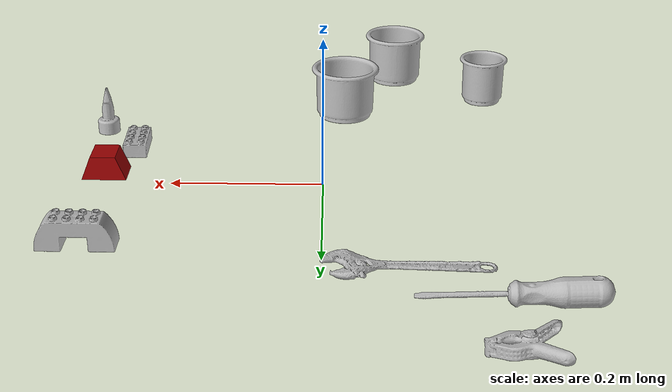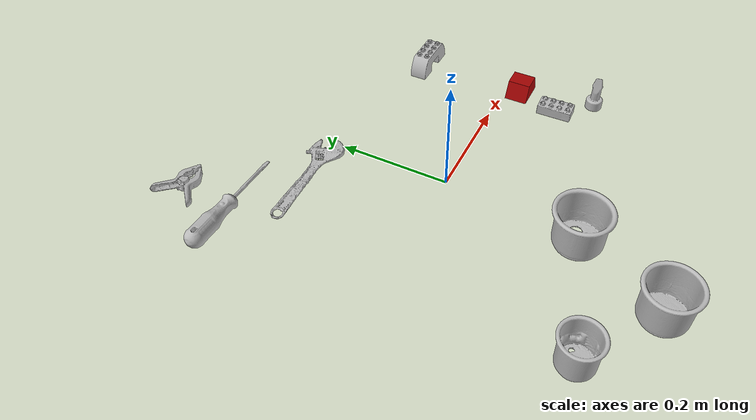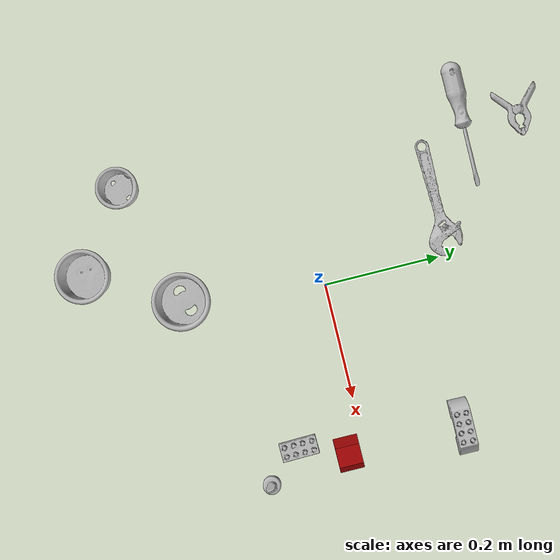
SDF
<?xml version="1.0" ?>
<sdf version="1.4">
  <world name="default">
    <light name="light1" type="point">
      <pose>0 0 1 0 0 0</pose>
      <diffuse>3 3 3 1</diffuse>
      <specular>3 3 3 1</specular>
    </light>
    <light name="light2" type="point">
      <pose>0 0.5 2 0 0 0</pose>
      <diffuse>1 1 1 1</diffuse>
      <specular>1 1 1 1</specular>
    </light>
    <light name="light3" type="point">
      <pose>0 0.5 2 0 0 0</pose>
      <diffuse>3 3 3 1</diffuse>
      <specular>3 3 3 1</specular>
    </light>
    <scene>
      <ambient>0.7 0.7 0.7</ambient>
    </scene>
    <model name="cup1">
      <link name="link_cup1">
        <collision name="default">
          <geometry>
            <mesh>
              <uri>model://d_cups/collision_meshes/collision.obj</uri>
              <scale>1.0 1.0 1.0</scale>
            </mesh>
          </geometry>
          <surface>
            <friction>
              <ode>
                <mu>0.5</mu>
                <mu2>0.5</mu2>
              </ode>
            </friction>
          </surface>
        </collision>
        <visual name="default">
          <geometry>
            <mesh>
              <uri>model://d_cups/visual_meshes/visual.dae</uri>
              <scale>1.0 1.0 1.0</scale>
            </mesh>
          </geometry>
        </visual>
        <inertial>
          <mass>0.06783133745193481</mass>
          <pose>0.0008068059105426073 0.0019117397023364902 -0.002266651252284646 0.24012426461604838 -0.24709695541432683 0.5942481546461544</pose>
          <inertia>
            <ixx>5.679078e-05</ixx>
            <iyy>5.662642e-05</iyy>
            <izz>5.1405317e-05</izz>
            <ixy>0</ixy>
            <ixz>0</ixz>
            <iyz>0</iyz>
          </inertia>
        </inertial>
      </link>
      <pose>-0.24000601470470428 -0.30000099539756775 0.03465899080038071 -2.6077032047600045e-08 -2.2351741839343742e-08 -3.725290007028371e-09</pose>
    </model>
    <model name="cup2">
      <link name="link_cup2">
        <collision name="default">
          <geometry>
            <mesh>
              <uri>model://h_cups/collision_meshes/collision.obj</uri>
              <scale>1.0 1.0 1.0</scale>
            </mesh>
          </geometry>
          <surface>
            <friction>
              <ode>
                <mu>0.5</mu>
                <mu2>0.5</mu2>
              </ode>
            </friction>
          </surface>
        </collision>
        <visual name="default">
          <geometry>
            <mesh>
              <uri>model://h_cups/visual_meshes/visual.dae</uri>
              <scale>1.0 1.0 1.0</scale>
            </mesh>
          </geometry>
        </visual>
        <inertial>
          <mass>0.0420527309179306</mass>
          <pose>-2.702834171941504e-05 0.0002301869390066713 -0.0018405404407531023 -0.02436231807299455 0.06545237013505961 0.1288477560592675</pose>
          <inertia>
            <ixx>5.430915e-05</ixx>
            <iyy>5.3661057e-05</iyy>
            <izz>5.69554e-05</izz>
            <ixy>0</ixy>
            <ixz>0</ixz>
            <iyz>0</iyz>
          </inertia>
        </inertial>
      </link>
      <pose>-0.11006101220846176 -0.39000022411346436 0.0377579890191555 5.1222779417292714e-08 -3.247981515561378e-08 -2.3284228526944826e-06</pose>
    </model>
    <model name="cup3">
      <link name="link_cup3">
        <collision name="default">
          <geometry>
            <mesh>
              <uri>model://i_cups/collision_meshes/collision.obj</uri>
              <scale>1.0 1.0 1.0</scale>
            </mesh>
          </geometry>
          <surface>
            <friction>
              <ode>
                <mu>0.5</mu>
                <mu2>0.5</mu2>
              </ode>
            </friction>
          </surface>
        </collision>
        <visual name="default">
          <geometry>
            <mesh>
              <uri>model://i_cups/visual_meshes/visual.dae</uri>
              <scale>1.0 1.0 1.0</scale>
            </mesh>
          </geometry>
        </visual>
        <inertial>
          <mass>0.1172947883605957</mass>
          <pose>0.00011240218736929819 0.00016797319403849542 -0.0008579035638831556 -0.028982974239284674 -0.039873277979934216 -0.3459139003356122</pose>
          <inertia>
            <ixx>0.00016239638</ixx>
            <iyy>0.00016382721</iyy>
            <izz>0.00018150422</izz>
            <ixy>0</ixy>
            <ixz>0</ixz>
            <iyz>0</iyz>
          </inertia>
        </inertial>
      </link>
      <pose>-0.030157193541526794 -0.24016910791397095 0.03777402266860008 0.0019398836620932668 -0.006374870057196209 -0.00016400002347347693</pose>
    </model>
    <model name="toy1">
      <link name="link_toy1">
        <collision name="default">
          <geometry>
            <mesh>
              <uri>model://prism/collision_meshes/collision.obj</uri>
              <scale>0.5 0.5 0.5</scale>
            </mesh>
          </geometry>
          <surface>
            <friction>
              <ode>
                <mu>0.5</mu>
                <mu2>0.5</mu2>
              </ode>
            </friction>
          </surface>
        </collision>
        <visual name="default">
          <geometry>
            <mesh>
              <uri>model://prism/visual_meshes/visual.dae</uri>
              <scale>0.5 0.5 0.5</scale>
            </mesh>
          </geometry>
        </visual>
        <inertial>
          <mass>0.04854338616132736</mass>
          <pose>-4.92679828312248e-05 -2.480786349678965e-07 -0.0016934549203142524 0.0 0.006559181697473799 0.0</pose>
          <inertia>
            <ixx>1.0952453e-05</ixx>
            <iyy>1.3236178e-05</iyy>
            <izz>1.6212734e-05</izz>
            <ixy>0</ixy>
            <ixz>0</ixz>
            <iyz>0</iyz>
          </inertia>
        </inertial>
      </link>
      <pose>0.28999999165534973 -0.029999762773513794 0.016084998846054077 2.0951365941299966e-08 -7.916244325329693e-09 2.3302519017199482e-07</pose>
    </model>
    <model name="toy2">
      <link name="link_toy2">
        <collision name="default">
          <geometry>
            <mesh>
              <uri>model://e_toy_airplane/collision_meshes/collision.obj</uri>
              <scale>1.0 1.0 1.0</scale>
            </mesh>
          </geometry>
          <surface>
            <friction>
              <ode>
                <mu>0.5</mu>
                <mu2>0.5</mu2>
              </ode>
            </friction>
          </surface>
        </collision>
        <visual name="default">
          <geometry>
            <mesh>
              <uri>model://e_toy_airplane/visual_meshes/visual.dae</uri>
              <scale>1.0 1.0 1.0</scale>
            </mesh>
          </geometry>
        </visual>
        <inertial>
          <mass>0.014407381415367126</mass>
          <pose>0.00011740459740394726 -2.2482932763523422e-05 -0.011187206022441387 0.005518488041491648 0.009228285270614433 0.15041380385765837</pose>
          <inertia>
            <ixx>4.397297e-06</ixx>
            <iyy>4.352315e-06</iyy>
            <izz>1.3215607e-06</izz>
            <ixy>0</ixy>
            <ixz>0</ixz>
            <iyz>0</iyz>
          </inertia>
        </inertial>
      </link>
      <pose>0.3100433051586151 -0.169939324259758 0.03321221470832825 5.365786799882635e-05 -0.00018422880300465147 -1.1465696507923056e-05</pose>
    </model>
    <model name="toy3">
      <link name="link_toy3">
        <collision name="default">
          <geometry>
            <mesh>
              <uri>model://e_lego_duplo/collision_meshes/collision.obj</uri>
              <scale>1.0 1.0 1.0</scale>
            </mesh>
          </geometry>
          <surface>
            <friction>
              <ode>
                <mu>0.5</mu>
                <mu2>0.5</mu2>
              </ode>
            </friction>
          </surface>
        </collision>
        <visual name="default">
          <geometry>
            <mesh>
              <uri>model://e_lego_duplo/visual_meshes/visual.dae</uri>
              <scale>1.0 1.0 1.0</scale>
            </mesh>
          </geometry>
        </visual>
        <inertial>
          <mass>0.059077512472867966</mass>
          <pose>0.00032560460385866463 0.0002348544221604243 0.0019521447829902172 -0.0225678114641467 -6.824730634042773e-05 -0.007625154901652298</pose>
          <inertia>
            <ixx>1.2319611e-05</ixx>
            <iyy>5.0562856e-05</iyy>
            <izz>4.923807e-05</izz>
            <ixy>0</ixy>
            <ixz>0</ixz>
            <iyz>0</iyz>
          </inertia>
        </inertial>
      </link>
      <pose>0.2901900112628937 0.16997551918029785 0.021808994933962822 8.193525679826646e-08 -9.276830297955851e-09 -3.822561613268409e-07</pose>
    </model>
    <model name="toy4">
      <link name="link_toy4">
        <collision name="default">
          <geometry>
            <mesh>
              <uri>model://c_lego_duplo/collision_meshes/collision.obj</uri>
              <scale>1.0 1.0 1.0</scale>
            </mesh>
          </geometry>
          <surface>
            <friction>
              <ode>
                <mu>0.5</mu>
                <mu2>0.5</mu2>
              </ode>
            </friction>
          </surface>
        </collision>
        <visual name="default">
          <geometry>
            <mesh>
              <uri>model://c_lego_duplo/visual_meshes/visual.dae</uri>
              <scale>1.0 1.0 1.0</scale>
            </mesh>
          </geometry>
        </visual>
        <inertial>
          <mass>0.019630447030067444</mass>
          <pose>0.000316459103487432 0.00019464583601802588 0.0010453149443492293 -0.011520787241280632 0.0059000791517924015 0.031100331826339908</pose>
          <inertia>
            <ixx>7.554163e-06</ixx>
            <iyy>2.4130718e-06</iyy>
            <izz>8.827816e-06</izz>
            <ixy>0</ixy>
            <ixz>0</ixz>
            <iyz>0</iyz>
          </inertia>
        </inertial>
      </link>
      <pose>0.25991591811180115 -0.11009040474891663 0.011981488205492496 0.008019806065003295 -0.0020914586857356163 -5.513933003856573e-05</pose>
    </model>
    <model name="hardware1">
      <link name="link_hardware1">
        <collision name="default">
          <geometry>
            <mesh>
              <uri>model://flat_screwdriver/collision_meshes/collision.obj</uri>
              <scale>1.0 1.0 1.0</scale>
            </mesh>
          </geometry>
          <surface>
            <friction>
              <ode>
                <mu>0.5</mu>
                <mu2>0.5</mu2>
              </ode>
            </friction>
          </surface>
        </collision>
        <visual name="default">
          <geometry>
            <mesh>
              <uri>model://flat_screwdriver/visual_meshes/visual.dae</uri>
              <scale>1.0 1.0 1.0</scale>
            </mesh>
          </geometry>
        </visual>
        <inertial>
          <mass>0.05795019492506981</mass>
          <pose>-0.0489187128841877 -0.0006576800369657576 -0.0006140916375443339 -0.5616548332173045 -0.0032337243504420286 0.0069822829580931615</pose>
          <inertia>
            <ixx>6.846775e-06</ixx>
            <iyy>8.6921296e-05</iyy>
            <izz>8.688106e-05</izz>
            <ixy>0</ixy>
            <ixz>0</ixz>
            <iyz>0</iyz>
          </inertia>
        </inertial>
      </link>
      <pose>-0.211026132106781 0.2941935956478119 0.015338591299951077 -0.21441252846051406 0.04069543649725432 -0.007375227581261001</pose>
    </model>
    <model name="hardware2">
      <link name="link_hardware2">
        <collision name="default">
          <geometry>
            <mesh>
              <uri>model://medium_clamp/collision_meshes/collision.obj</uri>
              <scale>1.0 1.0 1.0</scale>
            </mesh>
          </geometry>
          <surface>
            <friction>
              <ode>
                <mu>0.5</mu>
                <mu2>0.5</mu2>
              </ode>
            </friction>
          </surface>
        </collision>
        <visual name="default">
          <geometry>
            <mesh>
              <uri>model://medium_clamp/visual_meshes/visual.dae</uri>
              <scale>1.0 1.0 1.0</scale>
            </mesh>
          </geometry>
        </visual>
        <inertial>
          <mass>0.028340468183159828</mass>
          <pose>0.0053909942507743835 0.0003953247796744108 -0.0001222157443407923 -0.001226920261124021 0.0025845025680982987 0.03820769890719856</pose>
          <inertia>
            <ixx>7.720961e-06</ixx>
            <iyy>1.1236185e-05</iyy>
            <izz>1.7307093e-05</izz>
            <ixy>0</ixy>
            <ixz>0</ixz>
            <iyz>0</iyz>
          </inertia>
        </inertial>
      </link>
      <pose>-0.21262526512145996 0.388652503490448 0.01353366207331419 0.07744255112402663 0.08544798843435837 0.006648970623864139</pose>
    </model>
    <model name="hardware3">
      <link name="link_hardware3">
        <collision name="default">
          <geometry>
            <mesh>
              <uri>model://adjustable_wrench/collision_meshes/collision.obj</uri>
              <scale>1.0 1.0 1.0</scale>
            </mesh>
          </geometry>
          <surface>
            <friction>
              <ode>
                <mu>0.5</mu>
                <mu2>0.5</mu2>
              </ode>
            </friction>
          </surface>
        </collision>
        <visual name="default">
          <geometry>
            <mesh>
              <uri>model://adjustable_wrench/visual_meshes/visual.dae</uri>
              <scale>1.0 1.0 1.0</scale>
            </mesh>
          </geometry>
        </visual>
        <inertial>
          <mass>0.023935195058584213</mass>
          <pose>0.03740980476140976 -0.0028968877159059048 -0.001114922808483243 -0.014473210185193002 0.006656019736435525 -0.010954188403863873</pose>
          <inertia>
            <ixx>4.898683e-06</ixx>
            <iyy>5.733333e-05</iyy>
            <izz>6.197185e-05</izz>
            <ixy>0</ixy>
            <ixz>0</ixz>
            <iyz>0</iyz>
          </inertia>
        </inertial>
      </link>
      <pose>-0.09636358916759491 0.22085176408290863 0.006125038489699364 0.046759188065315746 -0.029270612844562043 -0.0006234525961933577</pose>
    </model>
  </world>
</sdf>
